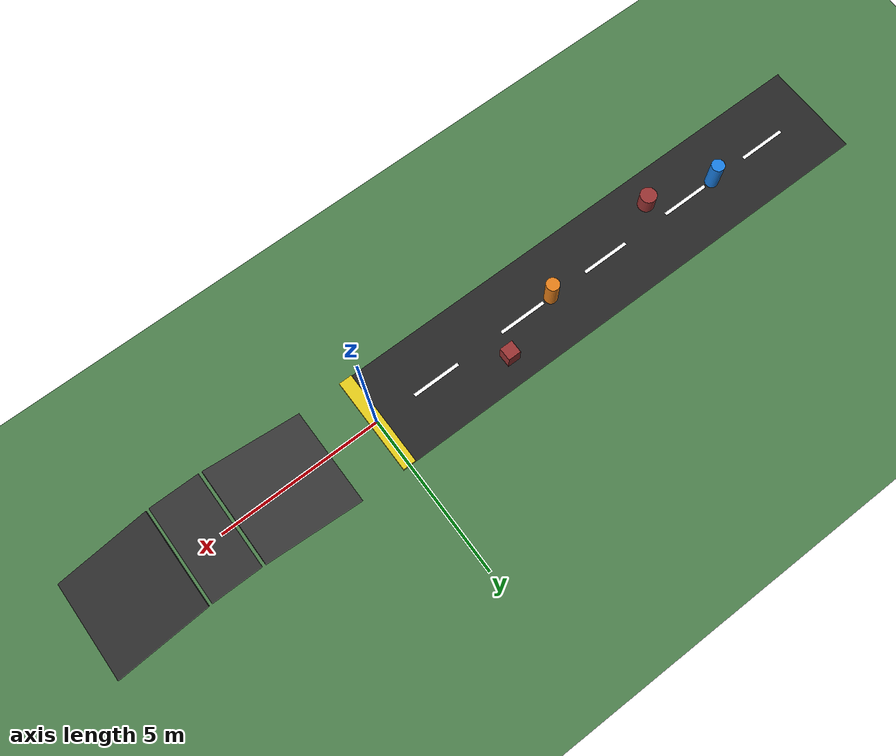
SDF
<?xml version="1.0" ?>
<sdf version="1.9">
  <world name="road_world">

    <physics name="1ms" type="ignored">
      <max_step_size>0.001</max_step_size>
      <real_time_factor>1.0</real_time_factor>
    </physics>

    <plugin filename="gz-sim-physics-system" name="gz::sim::systems::Physics"></plugin>
    <plugin filename="gz-sim-user-commands-system" name="gz::sim::systems::UserCommands"></plugin>
    <plugin filename="gz-sim-scene-broadcaster-system" name="gz::sim::systems::SceneBroadcaster"></plugin>
    <plugin filename="gz-sim-contact-system" name="gz::sim::systems::Contact"></plugin>

    <light type="directional" name="sun">
      <cast_shadows>true</cast_shadows>
      <pose>0 0 10 0 0 0</pose>
      <diffuse>0.8 0.8 0.8 1</diffuse>
      <specular>0.2 0.2 0.2 1</specular>
      <direction>-0.5 0.1 -0.9</direction>
    </light>

    <model name="ground_plane">
      <static>true</static>
      <link name="link">
        <collision name="collision"><geometry><plane><normal>0 0 1</normal><size>40 20</size></plane></geometry></collision>
        <visual name="visual"><geometry><plane><normal>0 0 1</normal><size>40 20</size></plane></geometry><material><ambient>0.3 0.5 0.3 1</ambient><diffuse>0.3 0.5 0.3 1</diffuse></material></visual>
      </link>
    </model>

    <model name="road_straight">
      <static>true</static>
      <pose>-8 0 0.01 0 0 0</pose>
      <link name="link">
        <collision name="collision"><geometry><box><size>16 3 0.02</size></box></geometry></collision>
        <visual name="visual"><geometry><box><size>16 3 0.02</size></box></geometry><material><ambient>0.15 0.15 0.15 1</ambient><diffuse>0.15 0.15 0.15 1</diffuse></material></visual>
      </link>
    </model>

    <model name="lane_marking_1"><static>true</static><pose>-14 0 0.02 0 0 0</pose><link name="link"><visual name="visual"><geometry><box><size>1.5 0.1 0.01</size></box></geometry><material><ambient>1 1 1 1</ambient><diffuse>1 1 1 1</diffuse></material></visual></link></model>
    <model name="lane_marking_2"><static>true</static><pose>-11 0 0.02 0 0 0</pose><link name="link"><visual name="visual"><geometry><box><size>1.5 0.1 0.01</size></box></geometry><material><ambient>1 1 1 1</ambient><diffuse>1 1 1 1</diffuse></material></visual></link></model>
    <model name="lane_marking_3"><static>true</static><pose>-8 0 0.02 0 0 0</pose><link name="link"><visual name="visual"><geometry><box><size>1.5 0.1 0.01</size></box></geometry><material><ambient>1 1 1 1</ambient><diffuse>1 1 1 1</diffuse></material></visual></link></model>
    <model name="lane_marking_4"><static>true</static><pose>-5 0 0.02 0 0 0</pose><link name="link"><visual name="visual"><geometry><box><size>1.5 0.1 0.01</size></box></geometry><material><ambient>1 1 1 1</ambient><diffuse>1 1 1 1</diffuse></material></visual></link></model>
    <model name="lane_marking_5"><static>true</static><pose>-2 0 0.02 0 0 0</pose><link name="link"><visual name="visual"><geometry><box><size>1.5 0.1 0.01</size></box></geometry><material><ambient>1 1 1 1</ambient><diffuse>1 1 1 1</diffuse></material></visual></link></model>

    <model name="speed_breaker">
      <static>true</static>
      <pose>0 0 0.05 0 0 0</pose>
      <link name="link">
        <collision name="collision"><geometry><box><size>0.4 3 0.1</size></box></geometry></collision>
        <visual name="visual"><geometry><box><size>0.4 3 0.1</size></box></geometry><material><ambient>0.9 0.8 0.1 1</ambient><diffuse>0.9 0.8 0.1 1</diffuse></material></visual>
      </link>
    </model>

    <model name="slope_up">
      <static>true</static>
      <pose>3 0 0.35 0 -0.25 0</pose>
      <link name="link">
        <collision name="collision"><geometry><box><size>3 3 0.05</size></box></geometry></collision>
        <visual name="visual"><geometry><box><size>3 3 0.05</size></box></geometry><material><ambient>0.2 0.2 0.2 1</ambient><diffuse>0.2 0.2 0.2 1</diffuse></material></visual>
      </link>
    </model>

    <model name="slope_top">
      <static>true</static>
      <pose>5.3 0 0.75 0 0 0</pose>
      <link name="link">
        <collision name="collision"><geometry><box><size>1.5 3 0.05</size></box></geometry></collision>
        <visual name="visual"><geometry><box><size>1.5 3 0.05</size></box></geometry><material><ambient>0.2 0.2 0.2 1</ambient><diffuse>0.2 0.2 0.2 1</diffuse></material></visual>
      </link>
    </model>

    <model name="slope_down">
      <static>true</static>
      <pose>7.6 0 0.35 0 0.25 0</pose>
      <link name="link">
        <collision name="collision"><geometry><box><size>3 3 0.05</size></box></geometry></collision>
        <visual name="visual"><geometry><box><size>3 3 0.05</size></box></geometry><material><ambient>0.2 0.2 0.2 1</ambient><diffuse>0.2 0.2 0.2 1</diffuse></material></visual>
      </link>
    </model>

    <model name="road_obstacle_1">
      <static>true</static>
      <pose>-4 0.7 0.3 0 0 0</pose>
      <link name="link">
        <collision name="collision"><geometry><box><size>0.4 0.4 0.6</size></box></geometry></collision>
        <visual name="visual"><geometry><box><size>0.4 0.4 0.6</size></box></geometry><material><ambient>0.6 0.2 0.2 1</ambient><diffuse>0.6 0.2 0.2 1</diffuse></material></visual>
      </link>
    </model>

    <model name="road_obstacle_2">
      <static>true</static>
      <pose>-10 -0.6 0.3 0 0 0</pose>
      <link name="link">
        <collision name="collision"><geometry><cylinder><radius>0.25</radius><length>0.6</length></cylinder></geometry></collision>
        <visual name="visual"><geometry><cylinder><radius>0.25</radius><length>0.6</length></cylinder></geometry><material><ambient>0.6 0.2 0.2 1</ambient><diffuse>0.6 0.2 0.2 1</diffuse></material></visual>
      </link>
    </model>

    <!-- PEDESTRIAN STAND-IN 1: cylinder that slides back and forth across the road -->
    <model name="pedestrian_1">
      <pose>-6 0 0.5 0 0 0</pose>
      <link name="base">
        <inertial><mass>100</mass><inertia><ixx>1</ixx><iyy>1</iyy><izz>1</izz><ixy>0</ixy><ixz>0</ixz><iyz>0</iyz></inertia></inertial>
      </link>
      <link name="person">
        <inertial><mass>5</mass><inertia><ixx>0.1</ixx><iyy>0.1</iyy><izz>0.1</izz><ixy>0</ixy><ixz>0</ixz><iyz>0</iyz></inertia></inertial>
        <collision name="collision"><geometry><cylinder><radius>0.2</radius><length>1.0</length></cylinder></geometry></collision>
        <visual name="visual"><geometry><cylinder><radius>0.2</radius><length>1.0</length></cylinder></geometry><material><ambient>0.9 0.5 0.1 1</ambient><diffuse>0.9 0.5 0.1 1</diffuse></material></visual>
      </link>
      <joint name="anchor_joint" type="fixed">
        <parent>world</parent>
        <child>base</child>
      </joint>
      <joint name="slide_joint" type="prismatic">
        <parent>base</parent>
        <child>person</child>
        <axis>
          <xyz>0 1 0</xyz>
          <limit><lower>-1.3</lower><upper>1.3</upper><effort>1e6</effort></limit>
        </axis>
      </joint>
      <plugin filename="gz-sim-joint-controller-system" name="gz::sim::systems::JointController">
        <joint_name>slide_joint</joint_name>
        <initial_velocity>0.4</initial_velocity>
      </plugin>
    </model>

    <!-- PEDESTRIAN STAND-IN 2 -->
    <model name="pedestrian_2">
      <pose>-12 0 0.5 0 0 0</pose>
      <link name="base">
        <inertial><mass>100</mass><inertia><ixx>1</ixx><iyy>1</iyy><izz>1</izz><ixy>0</ixy><ixz>0</ixz><iyz>0</iyz></inertia></inertial>
      </link>
      <link name="person">
        <inertial><mass>5</mass><inertia><ixx>0.1</ixx><iyy>0.1</iyy><izz>0.1</izz><ixy>0</ixy><ixz>0</ixz><iyz>0</iyz></inertia></inertial>
        <collision name="collision"><geometry><cylinder><radius>0.2</radius><length>1.0</length></cylinder></geometry></collision>
        <visual name="visual"><geometry><cylinder><radius>0.2</radius><length>1.0</length></cylinder></geometry><material><ambient>0.1 0.5 0.9 1</ambient><diffuse>0.1 0.5 0.9 1</diffuse></material></visual>
      </link>
      <joint name="anchor_joint" type="fixed">
        <parent>world</parent>
        <child>base</child>
      </joint>
      <joint name="slide_joint" type="prismatic">
        <parent>base</parent>
        <child>person</child>
        <axis>
          <xyz>0 -1 0</xyz>
          <limit><lower>-1.3</lower><upper>1.3</upper><effort>1e6</effort></limit>
        </axis>
      </joint>
      <plugin filename="gz-sim-joint-controller-system" name="gz::sim::systems::JointController">
        <joint_name>slide_joint</joint_name>
        <initial_velocity>0.3</initial_velocity>
      </plugin>
    </model>

  </world>
</sdf>
